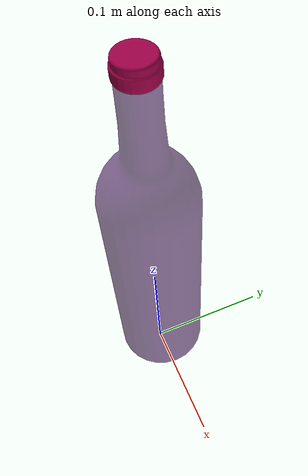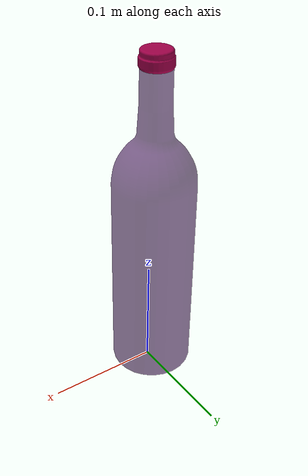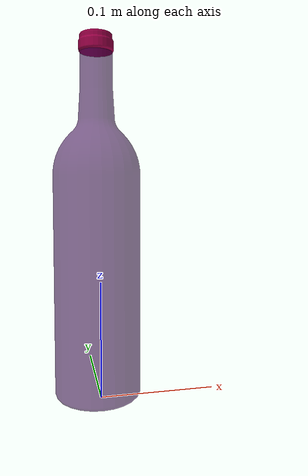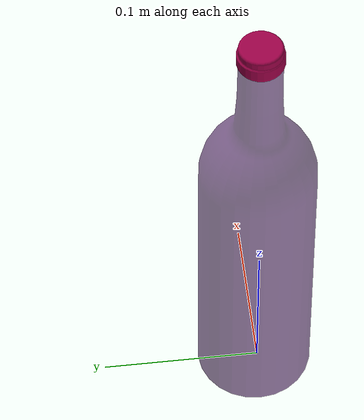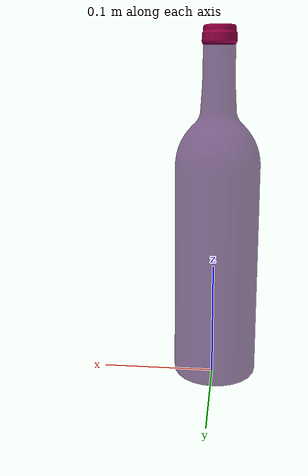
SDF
<?xml version='1.0'?>
<sdf version='1.6'>
  <model name='bottle_red_wine'>
    <link name='link_22'>
      <pose frame=''>-0.038814 -0.033806 0.002754 0 -0 0</pose>
        <visual name='visual'>
        <pose frame=''>0 0 0 0 -0 0</pose>
        <geometry>
          <mesh>
            <uri>model://bottle_red_wine/meshes/bottle.dae</uri>
            <scale>1 1 1</scale>
          </mesh>
        </geometry>
        <material>
          <lighting>1</lighting>
          <ambient>0.215 0 0.305 1</ambient>
          <diffuse>0.215 0 0.305 1</diffuse>
          <specular>0.01 0.01 0.01 1</specular>
          <emissive>0 0 0 1</emissive>
          <shader type='vertex'>
            <normal_map>__default__</normal_map>
          </shader>
        </material>
        <cast_shadows>1</cast_shadows>
        <transparency>0.4</transparency>
      </visual>
      <collision name='collision'>
        <laser_retro>0</laser_retro>
        <max_contacts>10</max_contacts>
        <pose frame=''>0 0 0 0 -0 0</pose>
        <geometry>
          <mesh>
            <uri>model://bottle_red_wine/meshes/bottle.dae</uri>
            <scale>1 1 1</scale>
          </mesh>
        </geometry>
       </collision>
    </link>
    <link name='link_23'>
      <pose frame=''> -0.038814 -0.033806 0.002754 0 -0 0</pose>
      <inertial>
        <mass>1</mass>
        <inertia>
          <ixx>0.166667</ixx>
          <ixy>0</ixy>
          <ixz>0</ixz>
          <iyy>0.166667</iyy>
          <iyz>0</iyz>
          <izz>0.166667</izz>
        </inertia>
        <pose frame=''>0 0 0 0 -0 0</pose>
      </inertial>
      <gravity>1</gravity>
      <self_collide>0</self_collide>
      <kinematic>0</kinematic>
      <visual name='visual'>
        <pose frame=''>0 0 0 0 -0 0</pose>
        <geometry>
          <mesh>
            <uri>model://bottle_red_wine/meshes/cap.dae</uri>
            <scale>1 1 1</scale>
          </mesh>
        </geometry>
        <material>
          <lighting>1</lighting>
          <ambient>0.623 0 0.282 1</ambient>
          <diffuse>0.623 0 0.282 1</diffuse>
          <specular>0.01 0.01 0.01 1</specular>
          <emissive>0 0 0 1</emissive>
          <shader type='vertex'>
            <normal_map>__default__</normal_map>
          </shader>
        </material>
        <cast_shadows>1</cast_shadows>
        <transparency>0</transparency>
      </visual>
      <collision name='collision'>
        <laser_retro>0</laser_retro>
        <max_contacts>10</max_contacts>
        <pose frame=''>0 0 0 0 -0 0</pose>
        <geometry>
          <mesh>
            <uri>model://bottle_red_wine/meshes/cap.dae</uri>
            <scale>1 1 1</scale>
          </mesh>
        </geometry>

      </collision>
    </link>
    <static>1</static>
    <allow_auto_disable>1</allow_auto_disable>
  </model>
</sdf>
